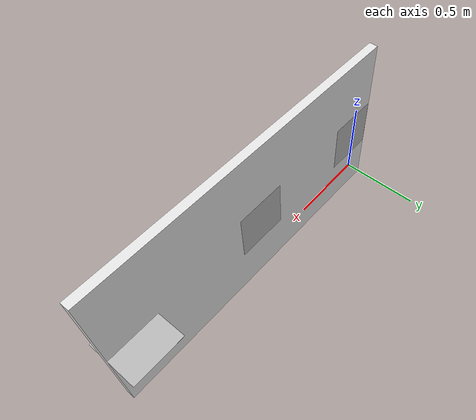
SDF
<?xml version="1.0" ?>
<sdf version="1.6">
  <model name="tag_wall">
    <static>true</static>
    <pose>0 0 0 0 0 0</pose>

    <link name="wall">
      <collision name="wall_collision">
        <pose>1.0 0.05 0.5 0 0 0</pose>
        <geometry>
          <box>
            <size>2.0 0.05 1.0</size>
          </box>
        </geometry>
      </collision>
      <visual name="wall_visual">
        <pose>1.0 0.05 0.5 0 0 0</pose>
        <geometry>
          <box>
            <size>2.0 0.05 1.0</size>
          </box>
        </geometry>
        <material>
          <ambient>0.9 0.9 0.9 1</ambient>
          <diffuse>0.9 0.9 0.9 1</diffuse>
        </material>
      </visual>

      <visual name="tag_0_panel">
        <pose>0.2 0.10 0.5 -1.57079632679 0 0</pose>
        <geometry>
          <plane>
            <normal>0 0 1</normal>
            <size>0.30 0.30</size>
          </plane>
        </geometry>
        <material>
          <script>
            <uri>model://tag_wall/materials/scripts</uri>
            <uri>model://tag_wall/materials/textures</uri>
            <name>TagWall/Tag0</name>
          </script>
        </material>
      </visual>

      <visual name="tag_1_panel">
        <pose>1.0 0.10 0.5 -1.57079632679 0 0</pose>
        <geometry>
          <plane>
            <normal>0 0 1</normal>
            <size>0.30 0.30</size>
          </plane>
        </geometry>
        <material>
          <script>
            <uri>model://tag_wall/materials/scripts</uri>
            <uri>model://tag_wall/materials/textures</uri>
            <name>TagWall/Tag1</name>
          </script>
        </material>
      </visual>

      <visual name="tag_2_panel">
        <pose>1.85 0.10 0.5 -1.57 0 0</pose>
        <geometry>
          <plane>
            <normal>0 1 0</normal>
            <size>0.30 0.30</size>
          </plane>
        </geometry>
        <material>
          <script>
            <uri>model://tag_wall/materials/scripts</uri>
            <uri>model://tag_wall/materials/textures</uri>
            <name>TagWall/Tag2</name>
          </script>
        </material>
      </visual>
    </link>
  </model>
</sdf>
